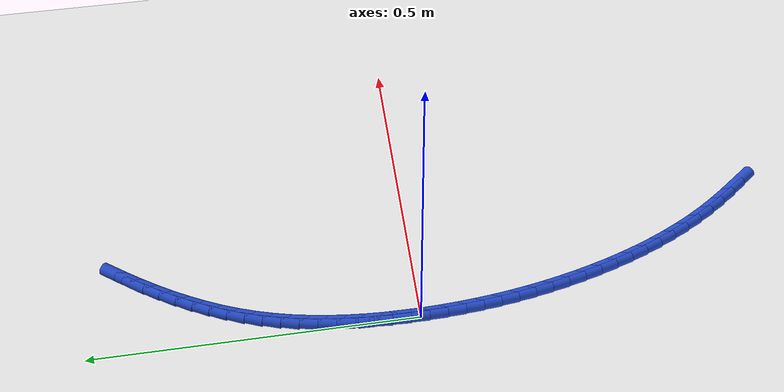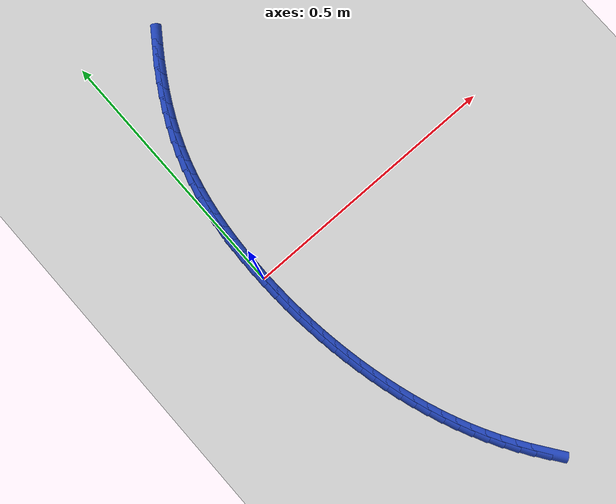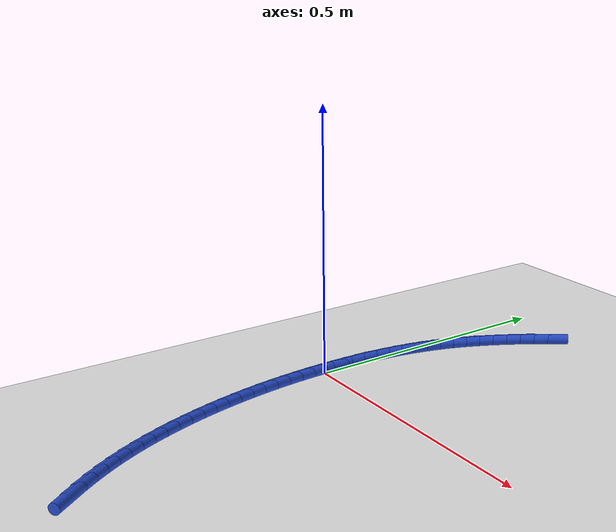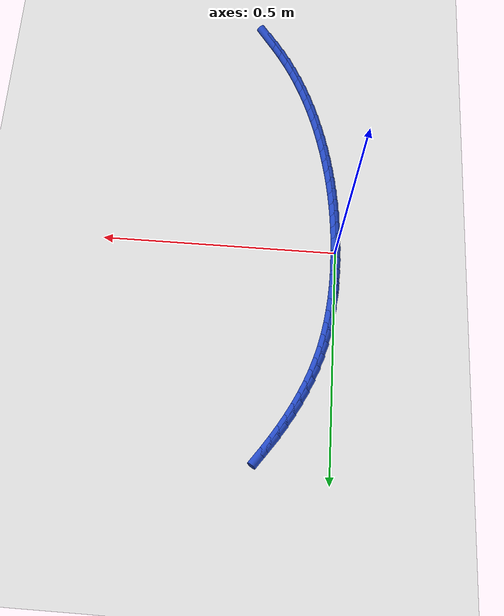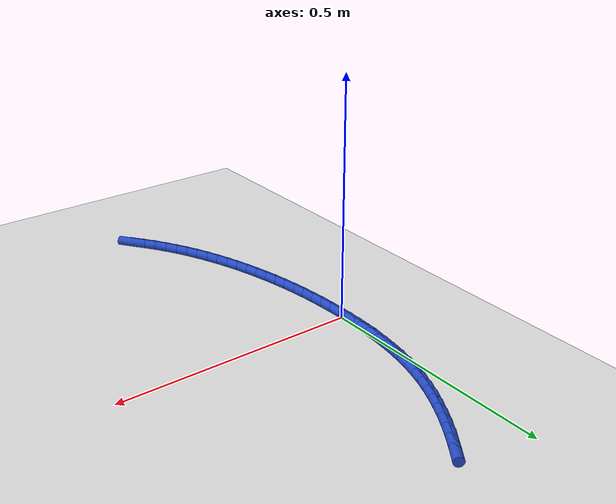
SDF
<sdf version="1.6">
 <world name="default">
  <model name="ground_plane">
   <static>1</static>
   <link name="link">
    <collision name="collision">
     <geometry><plane><normal>0 0 1</normal><size>100 100</size></plane></geometry>
     <surface><friction><ode><mu>100</mu><mu2>50</mu2></ode></friction></surface>
    </collision>
    <visual name="visual">
     <cast_shadows>0</cast_shadows>
     <geometry><plane><normal>0 0 1</normal><size>100 100</size></plane></geometry>
     <material>
      <script><uri>file://media/materials/scripts/gazebo.material</uri><name>Gazebo/WhiteGlow</name></script>
     </material>
    </visual>
   </link>
  </model>
  <model name="line">
   <link name="link_0">
    <pose>-1.0842021724855044e-17 -4.85722573273506e-17 0.01 0 1.57 -1.567138101349433</pose>
    <collision name="collision">
     <geometry><cylinder><radius>0.01</radius><length>0.08</length></cylinder></geometry>
    </collision>
    <visual name="visual">
     <material>
      <script><name>Gazebo/Blue</name><uri>file://media/materials/scripts/gazebo.material</uri></script>
     </material>
     <geometry><cylinder><radius>0.01</radius><length>0.08</length></cylinder></geometry>
    </visual>
   </link>
   <link name="link_1">
    <pose>-0.0001018480231743179 0.027840703193754954 0.01 0 1.57 1.5487937625036847</pose>
    <collision name="collision">
     <geometry><cylinder><radius>0.01</radius><length>0.08</length></cylinder></geometry>
    </collision>
    <visual name="visual">
     <material>
      <script><name>Gazebo/Blue</name><uri>file://media/materials/scripts/gazebo.material</uri></script>
     </material>
     <geometry><cylinder><radius>0.01</radius><length>0.08</length></cylinder></geometry>
    </visual>
   </link>
   <link name="link_2">
    <pose>0.0005114483140669621 0.055710062315789136 0.01 0 1.57 1.5206134481660152</pose>
    <collision name="collision">
     <geometry><cylinder><radius>0.01</radius><length>0.08</length></cylinder></geometry>
    </collision>
    <visual name="visual">
     <material>
      <script><name>Gazebo/Blue</name><uri>file://media/materials/scripts/gazebo.material</uri></script>
     </material>
     <geometry><cylinder><radius>0.01</radius><length>0.08</length></cylinder></geometry>
    </visual>
   </link>
   <link name="link_3">
    <pose>0.0019094863454247432 0.08354553733821796 0.01 0 1.57 1.4897752996863332</pose>
    <collision name="collision">
     <geometry><cylinder><radius>0.01</radius><length>0.08</length></cylinder></geometry>
    </collision>
    <visual name="visual">
     <material>
      <script><name>Gazebo/Blue</name><uri>file://media/materials/scripts/gazebo.material</uri></script>
     </material>
     <geometry><cylinder><radius>0.01</radius><length>0.08</length></cylinder></geometry>
    </visual>
   </link>
   <link name="link_4">
    <pose>0.004161863404599926 0.11128458823315666 0.01 0 1.57 1.4561345698130728</pose>
    <collision name="collision">
     <geometry><cylinder><radius>0.01</radius><length>0.08</length></cylinder></geometry>
    </collision>
    <visual name="visual">
     <material>
      <script><name>Gazebo/Blue</name><uri>file://media/materials/scripts/gazebo.material</uri></script>
     </material>
     <geometry><cylinder><radius>0.01</radius><length>0.08</length></cylinder></geometry>
    </visual>
   </link>
   <link name="link_5">
    <pose>0.007338176825293422 0.13886467497272076 0.01 0 1.57 1.4195457635117201</pose>
    <collision name="collision">
     <geometry><cylinder><radius>0.01</radius><length>0.08</length></cylinder></geometry>
    </collision>
    <visual name="visual">
     <material>
      <script><name>Gazebo/Blue</name><uri>file://media/materials/scripts/gazebo.material</uri></script>
     </material>
     <geometry><cylinder><radius>0.01</radius><length>0.08</length></cylinder></geometry>
    </visual>
   </link>
   <link name="link_6">
    <pose>0.011508023941206137 0.1662232575290255 0.01 0 1.57 1.3798701712815957</pose>
    <collision name="collision">
     <geometry><cylinder><radius>0.01</radius><length>0.08</length></cylinder></geometry>
    </collision>
    <visual name="visual">
     <material>
      <script><name>Gazebo/Blue</name><uri>file://media/materials/scripts/gazebo.material</uri></script>
     </material>
     <geometry><cylinder><radius>0.01</radius><length>0.08</length></cylinder></geometry>
    </visual>
   </link>
   <link name="link_7">
    <pose>0.016741002086038976 0.19329779587418625 0.01 0 1.57 1.336985593954813</pose>
    <collision name="collision">
     <geometry><cylinder><radius>0.01</radius><length>0.08</length></cylinder></geometry>
    </collision>
    <visual name="visual">
     <material>
      <script><name>Gazebo/Blue</name><uri>file://media/materials/scripts/gazebo.material</uri></script>
     </material>
     <geometry><cylinder><radius>0.01</radius><length>0.08</length></cylinder></geometry>
    </visual>
   </link>
   <link name="link_8">
    <pose>0.023106708593492856 0.22002574998031854 0.01 0 1.57 1.2907984733065927</pose>
    <collision name="collision">
     <geometry><cylinder><radius>0.01</radius><length>0.08</length></cylinder></geometry>
    </collision>
    <visual name="visual">
     <material>
      <script><name>Gazebo/Blue</name><uri>file://media/materials/scripts/gazebo.material</uri></script>
     </material>
     <geometry><cylinder><radius>0.01</radius><length>0.08</length></cylinder></geometry>
    </visual>
   </link>
   <link name="link_9">
    <pose>0.03067474079726868 0.24634457981953753 0.01 0 1.57 1.2420383899572776</pose>
    <collision name="collision">
     <geometry><cylinder><radius>0.01</radius><length>0.08</length></cylinder></geometry>
    </collision>
    <visual name="visual">
     <material>
      <script><name>Gazebo/Blue</name><uri>file://media/materials/scripts/gazebo.material</uri></script>
     </material>
     <geometry><cylinder><radius>0.01</radius><length>0.08</length></cylinder></geometry>
    </visual>
   </link>
   <link name="link_10">
    <pose>0.039495733256411876 0.2722021534968775 0.01 0 1.57 1.1948599811339922</pose>
    <collision name="collision">
     <geometry><cylinder><radius>0.01</radius><length>0.08</length></cylinder></geometry>
    </collision>
    <visual name="visual">
     <material>
      <script><name>Gazebo/Blue</name><uri>file://media/materials/scripts/gazebo.material</uri></script>
     </material>
     <geometry><cylinder><radius>0.01</radius><length>0.08</length></cylinder></geometry>
    </visual>
   </link>
   <link name="link_11">
    <pose>0.04952084665664499 0.2976009375247422 0.01 0 1.57 1.1507527885234596</pose>
    <collision name="collision">
     <geometry><cylinder><radius>0.01</radius><length>0.08</length></cylinder></geometry>
    </collision>
    <visual name="visual">
     <material>
      <script><name>Gazebo/Blue</name><uri>file://media/materials/scripts/gazebo.material</uri></script>
     </material>
     <geometry><cylinder><radius>0.01</radius><length>0.08</length></cylinder></geometry>
    </visual>
   </link>
   <link name="link_12">
    <pose>0.06066873592587018 0.32256123991047303 0.01 0 1.57 1.1098176480591977</pose>
    <collision name="collision">
     <geometry><cylinder><radius>0.01</radius><length>0.08</length></cylinder></geometry>
    </collision>
    <visual name="visual">
     <material>
      <script><name>Gazebo/Blue</name><uri>file://media/materials/scripts/gazebo.material</uri></script>
     </material>
     <geometry><cylinder><radius>0.01</radius><length>0.08</length></cylinder></geometry>
    </visual>
   </link>
   <link name="link_13">
    <pose>0.07285803767800553 0.3471033787134417 0.01 0 1.57 1.0720966619897865</pose>
    <collision name="collision">
     <geometry><cylinder><radius>0.01</radius><length>0.08</length></cylinder></geometry>
    </collision>
    <visual name="visual">
     <material>
      <script><name>Gazebo/Blue</name><uri>file://media/materials/scripts/gazebo.material</uri></script>
     </material>
     <geometry><cylinder><radius>0.01</radius><length>0.08</length></cylinder></geometry>
    </visual>
   </link>
   <link name="link_14">
    <pose>0.0860073885269689 0.3712476719930197 0.01 0 1.57 1.037586057258967</pose>
    <collision name="collision">
     <geometry><cylinder><radius>0.01</radius><length>0.08</length></cylinder></geometry>
    </collision>
    <visual name="visual">
     <material>
      <script><name>Gazebo/Blue</name><uri>file://media/materials/scripts/gazebo.material</uri></script>
     </material>
     <geometry><cylinder><radius>0.01</radius><length>0.08</length></cylinder></geometry>
    </visual>
   </link>
   <link name="link_15">
    <pose>0.10003542508667838 0.3950144378085786 0.01 0 1.57 1.006248077376711</pose>
    <collision name="collision">
     <geometry><cylinder><radius>0.01</radius><length>0.08</length></cylinder></geometry>
    </collision>
    <visual name="visual">
     <material>
      <script><name>Gazebo/Blue</name><uri>file://media/materials/scripts/gazebo.material</uri></script>
     </material>
     <geometry><cylinder><radius>0.01</radius><length>0.08</length></cylinder></geometry>
    </visual>
   </link>
   <link name="link_16">
    <pose>0.11486078397105197 0.41842399421949006 0.01 0 1.57 0.9780218718568917</pose>
    <collision name="collision">
     <geometry><cylinder><radius>0.01</radius><length>0.08</length></cylinder></geometry>
    </collision>
    <visual name="visual">
     <material>
      <script><name>Gazebo/Blue</name><uri>file://media/materials/scripts/gazebo.material</uri></script>
     </material>
     <geometry><cylinder><radius>0.01</radius><length>0.08</length></cylinder></geometry>
    </visual>
   </link>
   <link name="link_17">
    <pose>0.13040210179400769 0.44149665928512566 0.01 0 1.57 0.9528329684012898</pose>
    <collision name="collision">
     <geometry><cylinder><radius>0.01</radius><length>0.08</length></cylinder></geometry>
    </collision>
    <visual name="visual">
     <material>
      <script><name>Gazebo/Blue</name><uri>file://media/materials/scripts/gazebo.material</uri></script>
     </material>
     <geometry><cylinder><radius>0.01</radius><length>0.08</length></cylinder></geometry>
    </visual>
   </link>
   <link name="link_229">
    <pose>0.16703123142744128 -0.5463295092704649 0.01 0 1.57 -0.947962661716785</pose>
    <collision name="collision">
     <geometry><cylinder><radius>0.01</radius><length>0.08</length></cylinder></geometry>
    </collision>
    <visual name="visual">
     <material>
      <script><name>Gazebo/Blue</name><uri>file://media/materials/scripts/gazebo.material</uri></script>
     </material>
     <geometry><cylinder><radius>0.01</radius><length>0.08</length></cylinder></geometry>
    </visual>
   </link>
   <link name="link_230">
    <pose>0.15092450581455663 -0.5239028526454289 0.01 0 1.57 -0.9817832130626718</pose>
    <collision name="collision">
     <geometry><cylinder><radius>0.01</radius><length>0.08</length></cylinder></geometry>
    </collision>
    <visual name="visual">
     <material>
      <script><name>Gazebo/Blue</name><uri>file://media/materials/scripts/gazebo.material</uri></script>
     </material>
     <geometry><cylinder><radius>0.01</radius><length>0.08</length></cylinder></geometry>
    </visual>
   </link>
   <link name="link_231">
    <pose>0.13560309112003735 -0.5009709724141339 0.01 0 1.57 -1.0196003574386963</pose>
    <collision name="collision">
     <geometry><cylinder><radius>0.01</radius><length>0.08</length></cylinder></geometry>
    </collision>
    <visual name="visual">
     <material>
      <script><name>Gazebo/Blue</name><uri>file://media/materials/scripts/gazebo.material</uri></script>
     </material>
     <geometry><cylinder><radius>0.01</radius><length>0.08</length></cylinder></geometry>
    </visual>
   </link>
   <link name="link_232">
    <pose>0.12116533948332597 -0.4774854811410902 0.01 0 1.57 -1.0597882609264664</pose>
    <collision name="collision">
     <geometry><cylinder><radius>0.01</radius><length>0.08</length></cylinder></geometry>
    </collision>
    <visual name="visual">
     <material>
      <script><name>Gazebo/Blue</name><uri>file://media/materials/scripts/gazebo.material</uri></script>
     </material>
     <geometry><cylinder><radius>0.01</radius><length>0.08</length></cylinder></geometry>
    </visual>
   </link>
   <link name="link_233">
    <pose>0.10767523900509338 -0.45342535794413996 0.01 0 1.57 -1.098596823224297</pose>
    <collision name="collision">
     <geometry><cylinder><radius>0.01</radius><length>0.08</length></cylinder></geometry>
    </collision>
    <visual name="visual">
     <material>
      <script><name>Gazebo/Blue</name><uri>file://media/materials/scripts/gazebo.material</uri></script>
     </material>
     <geometry><cylinder><radius>0.01</radius><length>0.08</length></cylinder></geometry>
    </visual>
   </link>
   <link name="link_234">
    <pose>0.09511564521143594 -0.42883419364011377 0.01 0 1.57 -1.135515223713298</pose>
    <collision name="collision">
     <geometry><cylinder><radius>0.01</radius><length>0.08</length></cylinder></geometry>
    </collision>
    <visual name="visual">
     <material>
      <script><name>Gazebo/Blue</name><uri>file://media/materials/scripts/gazebo.material</uri></script>
     </material>
     <geometry><cylinder><radius>0.01</radius><length>0.08</length></cylinder></geometry>
    </visual>
   </link>
   <link name="link_235">
    <pose>0.08345770929713277 -0.40376490004589466 0.01 0 1.57 -1.1705893538443235</pose>
    <collision name="collision">
     <geometry><cylinder><radius>0.01</radius><length>0.08</length></cylinder></geometry>
    </collision>
    <visual name="visual">
     <material>
      <script><name>Gazebo/Blue</name><uri>file://media/materials/scripts/gazebo.material</uri></script>
     </material>
     <geometry><cylinder><radius>0.01</radius><length>0.08</length></cylinder></geometry>
    </visual>
   </link>
   <link name="link_236">
    <pose>0.07267258245696323 -0.3782703889783662 0.01 0 1.57 -1.2038787746844484</pose>
    <collision name="collision">
     <geometry><cylinder><radius>0.01</radius><length>0.08</length></cylinder></geometry>
    </collision>
    <visual name="visual">
     <material>
      <script><name>Gazebo/Blue</name><uri>file://media/materials/scripts/gazebo.material</uri></script>
     </material>
     <geometry><cylinder><radius>0.01</radius><length>0.08</length></cylinder></geometry>
    </visual>
   </link>
   <link name="link_237">
    <pose>0.06273141588570652 -0.3524035722544115 0.01 0 1.57 -1.2354529617091148</pose>
    <collision name="collision">
     <geometry><cylinder><radius>0.01</radius><length>0.08</length></cylinder></geometry>
    </collision>
    <visual name="visual">
     <material>
      <script><name>Gazebo/Blue</name><uri>file://media/materials/scripts/gazebo.material</uri></script>
     </material>
     <geometry><cylinder><radius>0.01</radius><length>0.08</length></cylinder></geometry>
    </visual>
   </link>
   <link name="link_238">
    <pose>0.05360536077814189 -0.3262173616909137 0.01 0 1.57 -1.2653881035615882</pose>
    <collision name="collision">
     <geometry><cylinder><radius>0.01</radius><length>0.08</length></cylinder></geometry>
    </collision>
    <visual name="visual">
     <material>
      <script><name>Gazebo/Blue</name><uri>file://media/materials/scripts/gazebo.material</uri></script>
     </material>
     <geometry><cylinder><radius>0.01</radius><length>0.08</length></cylinder></geometry>
    </visual>
   </link>
   <link name="link_239">
    <pose>0.045265568329048586 -0.2997646691047563 0.01 0 1.57 -1.2937644528312489</pose>
    <collision name="collision">
     <geometry><cylinder><radius>0.01</radius><length>0.08</length></cylinder></geometry>
    </collision>
    <visual name="visual">
     <material>
      <script><name>Gazebo/Blue</name><uri>file://media/materials/scripts/gazebo.material</uri></script>
     </material>
     <geometry><cylinder><radius>0.01</radius><length>0.08</length></cylinder></geometry>
    </visual>
   </link>
   <link name="link_240">
    <pose>0.03768318973320603 -0.2730984063128232 0.01 0 1.57 -1.3206643449443165</pose>
    <collision name="collision">
     <geometry><cylinder><radius>0.01</radius><length>0.08</length></cylinder></geometry>
    </collision>
    <visual name="visual">
     <material>
      <script><name>Gazebo/Blue</name><uri>file://media/materials/scripts/gazebo.material</uri></script>
     </material>
     <geometry><cylinder><radius>0.01</radius><length>0.08</length></cylinder></geometry>
    </visual>
   </link>
   <link name="link_241">
    <pose>0.030829378927634245 -0.24627147899734542 0.01 0 1.57 -1.3464296476635367</pose>
    <collision name="collision">
     <geometry><cylinder><radius>0.01</radius><length>0.08</length></cylinder></geometry>
    </collision>
    <visual name="visual">
     <material>
      <script><name>Gazebo/Blue</name><uri>file://media/materials/scripts/gazebo.material</uri></script>
     </material>
     <geometry><cylinder><radius>0.01</radius><length>0.08</length></cylinder></geometry>
    </visual>
   </link>
   <link name="link_242">
    <pose>0.024680157093255026 -0.2193259043593093 0.01 0 1.57 -1.3718868247094027</pose>
    <collision name="collision">
     <geometry><cylinder><radius>0.01</radius><length>0.08</length></cylinder></geometry>
    </collision>
    <visual name="visual">
     <material>
      <script><name>Gazebo/Blue</name><uri>file://media/materials/scripts/gazebo.material</uri></script>
     </material>
     <geometry><cylinder><radius>0.01</radius><length>0.08</length></cylinder></geometry>
    </visual>
   </link>
   <link name="link_243">
    <pose>0.01922644011382775 -0.19227037875204572 0.01 0 1.57 -1.397161020320101</pose>
    <collision name="collision">
     <geometry><cylinder><radius>0.01</radius><length>0.08</length></cylinder></geometry>
    </collision>
    <visual name="visual">
     <material>
      <script><name>Gazebo/Blue</name><uri>file://media/materials/scripts/gazebo.material</uri></script>
     </material>
     <geometry><cylinder><radius>0.01</radius><length>0.08</length></cylinder></geometry>
    </visual>
   </link>
   <link name="link_244">
    <pose>0.014461983260822753 -0.16510724655218761 0.01 0 1.57 -1.4222226458225369</pose>
    <collision name="collision">
     <geometry><cylinder><radius>0.01</radius><length>0.08</length></cylinder></geometry>
    </collision>
    <visual name="visual">
     <material>
      <script><name>Gazebo/Blue</name><uri>file://media/materials/scripts/gazebo.material</uri></script>
     </material>
     <geometry><cylinder><radius>0.01</radius><length>0.08</length></cylinder></geometry>
    </visual>
   </link>
   <link name="link_245">
    <pose>0.010380541805710386 -0.13783885213636798 0.01 0 1.57 -1.4470436744685389</pose>
    <collision name="collision">
     <geometry><cylinder><radius>0.01</radius><length>0.08</length></cylinder></geometry>
    </collision>
    <visual name="visual">
     <material>
      <script><name>Gazebo/Blue</name><uri>file://media/materials/scripts/gazebo.material</uri></script>
     </material>
     <geometry><cylinder><radius>0.01</radius><length>0.08</length></cylinder></geometry>
    </visual>
   </link>
   <link name="link_246">
    <pose>0.00697587101996099 -0.11046753988121973 0.01 0 1.57 -1.4715977981017192</pose>
    <collision name="collision">
     <geometry><cylinder><radius>0.01</radius><length>0.08</length></cylinder></geometry>
    </collision>
    <visual name="visual">
     <material>
      <script><name>Gazebo/Blue</name><uri>file://media/materials/scripts/gazebo.material</uri></script>
     </material>
     <geometry><cylinder><radius>0.01</radius><length>0.08</length></cylinder></geometry>
    </visual>
   </link>
   <link name="link_247">
    <pose>0.004241726175044912 -0.08299565416337588 0.01 0 1.57 -1.4958605549941568</pose>
    <collision name="collision">
     <geometry><cylinder><radius>0.01</radius><length>0.08</length></cylinder></geometry>
    </collision>
    <visual name="visual">
     <material>
      <script><name>Gazebo/Blue</name><uri>file://media/materials/scripts/gazebo.material</uri></script>
     </material>
     <geometry><cylinder><radius>0.01</radius><length>0.08</length></cylinder></geometry>
    </visual>
   </link>
   <link name="link_248">
    <pose>0.002171862542432488 -0.05542553935946931 0.01 0 1.57 -1.5198094282102315</pose>
    <collision name="collision">
     <geometry><cylinder><radius>0.01</radius><length>0.08</length></cylinder></geometry>
    </collision>
    <visual name="visual">
     <material>
      <script><name>Gazebo/Blue</name><uri>file://media/materials/scripts/gazebo.material</uri></script>
     </material>
     <geometry><cylinder><radius>0.01</radius><length>0.08</length></cylinder></geometry>
    </visual>
   </link>
   <link name="link_249">
    <pose>0.000760035393594061 -0.027759539846133 0.01 0 1.57 -1.543423914652943</pose>
    <collision name="collision">
     <geometry><cylinder><radius>0.01</radius><length>0.08</length></cylinder></geometry>
    </collision>
    <visual name="visual">
     <material>
      <script><name>Gazebo/Blue</name><uri>file://media/materials/scripts/gazebo.material</uri></script>
     </material>
     <geometry><cylinder><radius>0.01</radius><length>0.08</length></cylinder></geometry>
    </visual>
   </link>
   <link name="link_250">
    <pose>-2.2551405187698492e-17 1.0408340855860843e-16 0.01 0 1.57 -1.5666855656716376</pose>
    <collision name="collision">
     <geometry><cylinder><radius>0.01</radius><length>0.08</length></cylinder></geometry>
    </collision>
    <visual name="visual">
     <material>
      <script><name>Gazebo/Blue</name><uri>file://media/materials/scripts/gazebo.material</uri></script>
     </material>
     <geometry><cylinder><radius>0.01</radius><length>0.08</length></cylinder></geometry>
    </visual>
   </link>
   <link name="link_251">
    <pose>-0.00011448836687942294 0.027850735802297084 0.01 0 1.57 1.552014652853605</pose>
    <collision name="collision">
     <geometry><cylinder><radius>0.01</radius><length>0.08</length></cylinder></geometry>
    </collision>
    <visual name="visual">
     <material>
      <script><name>Gazebo/Blue</name><uri>file://media/materials/scripts/gazebo.material</uri></script>
     </material>
     <geometry><cylinder><radius>0.01</radius><length>0.08</length></cylinder></geometry>
    </visual>
   </link>
   <link name="link_252">
    <pose>0.00041032556442620414 0.05579032318412493 0.01 0 1.57 1.563441679201973</pose>
    <collision name="collision">
     <geometry><cylinder><radius>0.01</radius><length>0.08</length></cylinder></geometry>
    </collision>
    <visual name="visual">
     <material>
      <script><name>Gazebo/Blue</name><uri>file://media/materials/scripts/gazebo.material</uri></script>
     </material>
     <geometry><cylinder><radius>0.01</radius><length>0.08</length></cylinder></geometry>
    </visual>
   </link>
  </model>
 </world>
</sdf>
